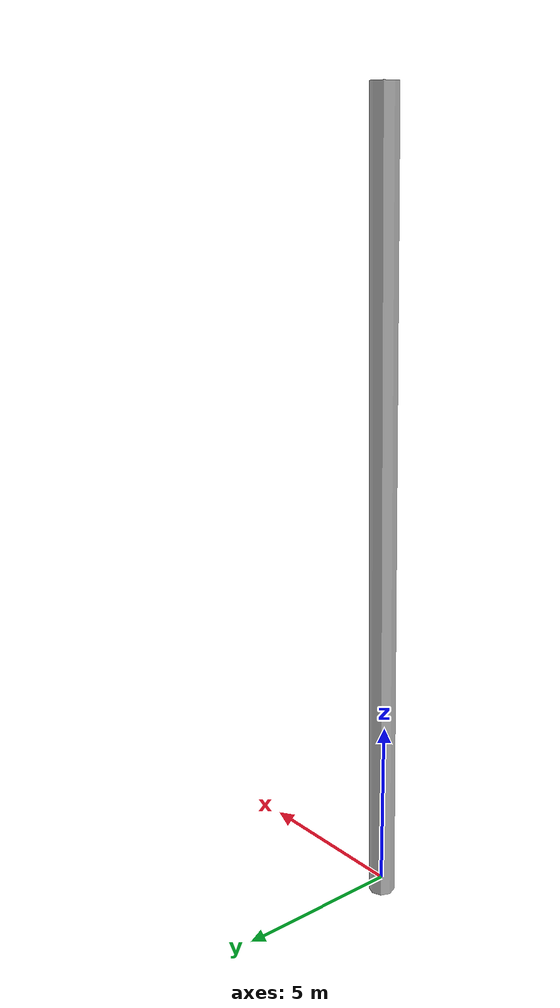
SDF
<?xml version='1.0'?>
<sdf version="1.4">
  <model name="park_tree_5">
    <static>true</static>
    <link name="link">
      <collision name="collision">
        <geometry>
          <mesh>
            <uri>model://park_tree_5/meshes/collision.dae</uri>
          </mesh>
        </geometry>
      </collision>
      <visual name="visual">
        <geometry>
          <mesh>
            <uri>model://park_tree_5/meshes/park_tree_5.dae</uri>
          </mesh>
        </geometry>
      </visual>
    </link>
  </model>
</sdf>
